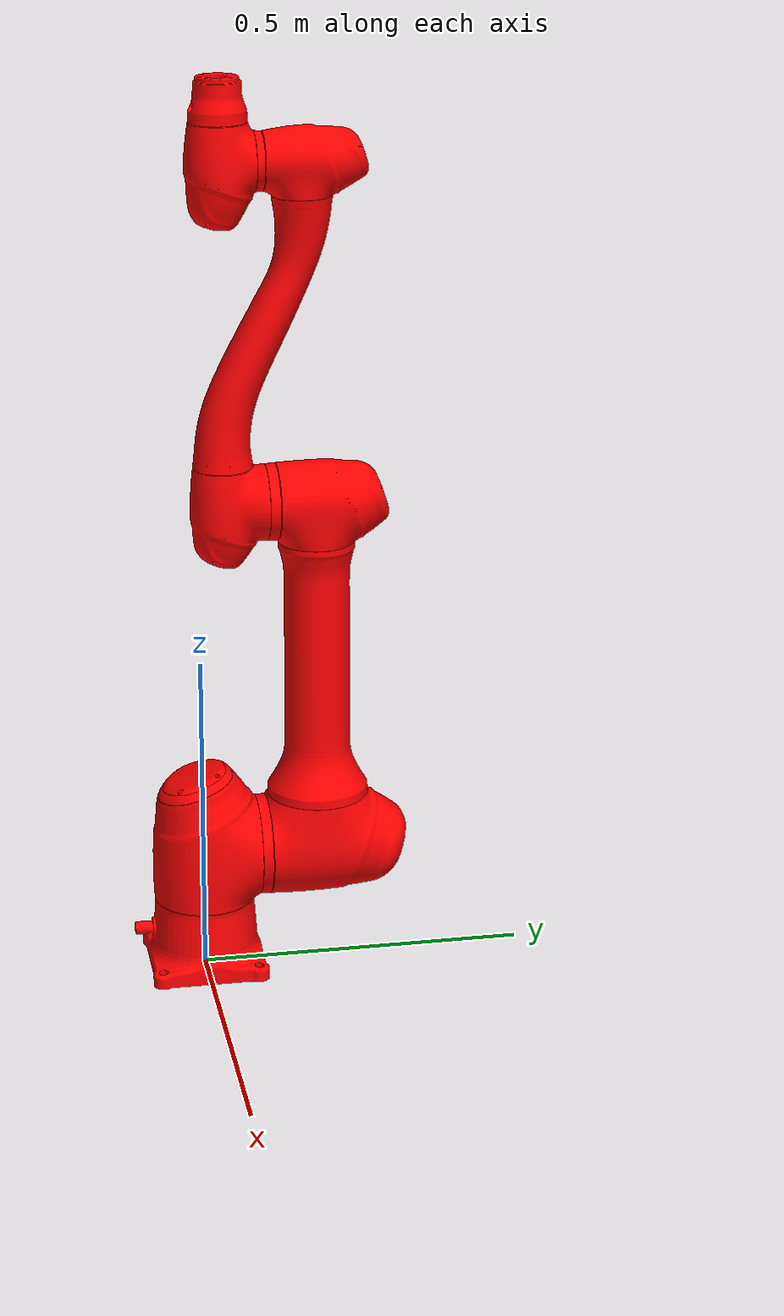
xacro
<?xml version="1.0"?>
<robot xmlns:xacro="http://www.ros.org/wiki/xacro" name="a0912">
    <xacro:arg name="initial_positions_file" default="initial_positions.yaml" />
    <link name="world"/>
    <joint name="world_fixed" type="fixed">
        <origin xyz="0 0 0" rpy="0 0 0"/>
        <parent link="world"/>
        <child link="base_link"/>
    </joint>
    <!-- Import a0912 urdf file -->
    <xacro:include filename="$(find dsr_description2)/urdf/a0912.urdf" />

    <!-- Import a0912 ros2_control description -->

    <xacro:include filename="dsr.ros2_control.xacro" />

    <xacro:dsr_moveit_ros2_control name="DSRFakeSystem" initial_positions_file="$(arg initial_positions_file)"/>
</robot>

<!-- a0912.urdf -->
<robot name="a0912" xmlns:xacro="http://www.ros.org/wiki/xacro">
		<link name="base_link">
			<inertial>
				<mass value="3.635"/>
				<origin xyz="4e-06   -0.001016     0.08181"/>
				<inertia ixx="0.02216" ixy="5.8001e-06" ixz="6.1941e-06" iyy="0.024835"
					iyz="-5.3034e-05"
					izz="0.021063"/>
				</inertial>
			<collision>
				<origin rpy="0 0 0" xyz="0 0 0" />
                <geometry>
					<mesh filename="package://dsr_description2/meshes/a0912_collision/A0912_0_0.dae" scale="0.001 0.001 0.001" />
                </geometry>
            </collision>
			<visual>
				<origin rpy="0 0 0" xyz="0 0 0" />
				<geometry>
					<mesh filename="package://dsr_description2/meshes/a0912_white/A0912_0_0.dae" scale="0.001 0.001 0.001" />
				</geometry>
			</visual>
		</link>
		<link name="base"/>
		<joint name="base_link-base" type="fixed">
			<origin rpy="0 0 0" xyz="0 0 0.450"/>
			<parent link="base_link"/>
			<child link="base"/>
		</joint>
		<!-- joint 1 -->
		<joint name="joint_1" type="revolute">
			<parent link="base_link" />
			<child link="link_1" />
			<origin rpy="0 0 0" xyz="0 0 0.195" />
			<axis xyz="0 0 1" />
			<limit effort="411" lower="-6.2832" upper="6.2832" velocity="3.1416"/>
			<dynamics friction="0" />
		</joint>
		<link name="link_1">
			<inertial>
				<mass value="7.863"/>
				<origin xyz="4.4e-05    0.029982    -0.01112"/>
				<inertia ixx="0.045839" ixy="1.2759e-05" ixz="-3.6168e-05" iyy="0.032913"
					iyz="-0.0029965"
					izz="0.044399"/>
			</inertial>
            <collision>
				<origin rpy="0 0 0" xyz="0 0 0" />
                <geometry>
					<mesh filename="package://dsr_description2/meshes/a0912_collision/A0912_1_0.dae" scale="0.001 0.001 0.001" />
                </geometry>
            </collision>
			<visual>
				<origin rpy="0 0 0" xyz="0 0 0" />
				<geometry>
					<mesh filename="package://dsr_description2/meshes/a0912_white/A0912_1_0.dae" scale="0.001 0.001 0.001" />
				</geometry>
			</visual>
			<collision>
				<origin rpy="0 0 0" xyz="0 0 0" />
                <geometry>
					<mesh filename="package://dsr_description2/meshes/a0912_collision/A0912_1_1.dae" scale="0.001 0.001 0.001" />
                </geometry>
            </collision>
            <visual>
				<origin rpy="0 0 0" xyz="0 0 0" />
				<geometry>
					<mesh filename="package://dsr_description2/meshes/a0912_white/A0912_1_1.dae" scale="0.001 0.001 0.001" />
				</geometry>
			</visual>
			<collision>
				<origin rpy="0 0 0" xyz="0 0 0" />
                <geometry>
					<mesh filename="package://dsr_description2/meshes/a0912_collision/A0912_1_2.dae" scale="0.001 0.001 0.001" />
                </geometry>
            </collision>
            <visual>
				<origin rpy="0 0 0" xyz="0 0 0" />
				<geometry>
					<mesh filename="package://dsr_description2/meshes/a0912_white/A0912_1_2.dae" scale="0.001 0.001 0.001" />
				</geometry>
			</visual>
		</link>
		<!-- joint2 -->
		<joint name="joint_2" type="revolute">
			<parent link="link_1" />
			<child link="link_2" />
			<origin rpy="0 -1.571 -1.571" xyz="0 0.039 0" />
			<axis xyz="0 0 1" />
			<limit effort="411" lower="-6.2832" upper="6.2832" velocity="3.1416"/>
			<dynamics friction="0" />
		</joint>
		<link name="link_2">
			<inertial>
				<mass value="10.985"/>
				<origin xyz="0.19748    0.001426     0.13191"/>
				<inertia ixx="0.04446" ixy="-0.0049948" ixz="-0.010992" iyy="0.67642" iyz="-2.8483e-05"
					izz="0.67428"/>
			</inertial>
            <collision>
				<origin rpy="0 0 0" xyz="0 0 0" />
                <geometry>
					<mesh filename="package://dsr_description2/meshes/a0912_collision/A0912_2_0.dae" scale="0.001 0.001 0.001" />
                </geometry>
            </collision>
			<visual>
				<origin rpy="0 0 0" xyz="0 0 0" />
				<geometry>
					<mesh filename="package://dsr_description2/meshes/a0912_white/A0912_2_0.dae" scale="0.001 0.001 0.001" />
				</geometry>
			</visual>
			<collision>
				<origin rpy="0 0 0" xyz="0 0 0" />
                <geometry>
					<mesh filename="package://dsr_description2/meshes/a0912_collision/A0912_2_1.dae" scale="0.001 0.001 0.001" />
                </geometry>
            </collision>
			<visual>
				<origin rpy="0 0 0" xyz="0 0 0" />
				<geometry>
					<mesh filename="package://dsr_description2/meshes/a0912_white/A0912_2_1.dae" scale="0.001 0.001 0.001" />
				</geometry>
			</visual>
			<collision>
				<origin rpy="0 0 0" xyz="0 0 0" />
                <geometry>
					<mesh filename="package://dsr_description2/meshes/a0912_collision/A0912_2_2.dae" scale="0.001 0.001 0.001" />
                </geometry>
            </collision>
			<visual>
				<origin rpy="0 0 0" xyz="0 0 0" />
				<geometry>
					<mesh filename="package://dsr_description2/meshes/a0912_white/A0912_2_2.dae" scale="0.001 0.001 0.001" />
				</geometry>
			</visual>
		</link>
		<!-- joint3 -->
		<joint name="joint_3" type="revolute">
			<parent link="link_2" />
			<child link="link_3" />
			<origin rpy="0 0 1.571" xyz="0.56 0 0" />
			<axis xyz="0 0 1" />
			<limit effort="194" lower="-2.7925" upper="2.7925" velocity="3.1416"/>
			<dynamics friction="0" />
		</joint>
		<link name="link_3">
			<inertial>
				<mass value="2.881"/>
				<origin xyz="8.5e-05   -0.002513    0.032058"/>
				<inertia ixx="0.012756" ixy="-5.4257e-06" ixz="1.6402e-05" iyy="0.011416"
					iyz="-0.0001989"
					izz="0.0080652"/>
			</inertial>
			<collision>
				<origin rpy="0 0 0" xyz="0 0 0" />
                <geometry>
					<mesh filename="package://dsr_description2/meshes/a0912_collision/A0912_3_0.dae" scale="0.001 0.001 0.001" />
                </geometry>
            </collision>
			<visual>
				<origin rpy="0 0 0" xyz="0 0 0" />
				<geometry>
					<mesh filename="package://dsr_description2/meshes/a0912_white/A0912_3_0.dae" scale="0.001 0.001 0.001" />
				</geometry>
			</visual>
			<collision>
				<origin rpy="0 0 0" xyz="0 0 0" />
                <geometry>
					<mesh filename="package://dsr_description2/meshes/a0912_collision/A0912_3_1.dae" scale="0.001 0.001 0.001" />
                </geometry>
            </collision>
            <visual>
				<origin rpy="0 0 0" xyz="0 0 0" />
				<geometry>
					<mesh filename="package://dsr_description2/meshes/a0912_white/A0912_3_1.dae" scale="0.001 0.001 0.001" />
				</geometry>
			</visual>
		</link>
		<!-- joint4 -->
		<joint name="joint_4" type="revolute">
			<parent link="link_3" />
			<child link="link_4" />
			<origin rpy="1.571 0 0" xyz="0 -0.516 0" />
			<axis xyz="0 0 1" />
			<limit effort="50" lower="-6.2832" upper="6.2832" velocity="6.2832"/>
			<dynamics friction="0" />
		</joint>
		<link name="link_4">
			<inertial>
				<mass value="3.273"/>
				<origin xyz="-9.6e-05    0.085314    -0.13975"/>
				<inertia ixx="0.12246" ixy="2.3905e-05" ixz="2.5022e-05" iyy="0.11307" iyz="-0.027995"
					izz="0.017186"/>
			</inertial>
            <collision>
				<origin rpy="0 0 0" xyz="0 0 0" />
                <geometry>
					<mesh filename="package://dsr_description2/meshes/a0912_collision/A0912_4_0.dae" scale="0.001 0.001 0.001" />
                </geometry>
            </collision>
			<visual>
				<origin rpy="0 0 0" xyz="0 0 0" />
				<geometry>
					<mesh filename="package://dsr_description2/meshes/a0912_white/A0912_4_0.dae" scale="0.001 0.001 0.001" />
				</geometry>
			</visual>
			<collision>
				<origin rpy="0 0 0" xyz="0 0 0" />
                <geometry>
					<mesh filename="package://dsr_description2/meshes/a0912_collision/A0912_4_1.dae" scale="0.001 0.001 0.001" />
                </geometry>
            </collision>
            <visual>
				<origin rpy="0 0 0" xyz="0 0 0" />
				<geometry>
					<mesh filename="package://dsr_description2/meshes/a0912_white/A0912_4_1.dae" scale="0.001 0.001 0.001" />
				</geometry>
			</visual>
		</link>
		<!-- joint5 -->
		<joint name="joint_5" type="revolute">
			<parent link="link_4" />
			<child link="link_5" />
			<origin rpy="-1.571 0 0" xyz="0 0 0" />
			<axis xyz="0 0 1" />
			<limit effort="50" lower="-6.2832" upper="6.2832" velocity="6.2832"/>
			<dynamics friction="0" />
		</joint>
		<link name="link_5">
			<inertial>
				<mass value="2.141"/>
				<origin xyz="0.000109   -0.003286     0.01477"/>
				<inertia ixx="0.013145" ixy="-4.7132e-06" ixz="8.5804e-06" iyy="0.0073072"
					iyz="-5.999e-05"
					izz="0.0090476"/>
			</inertial>
            <collision>
				<origin rpy="0 0 0" xyz="0 0 0" />
                <geometry>
					<mesh filename="package://dsr_description2/meshes/a0912_collision/A0912_5_0.dae" scale="0.001 0.001 0.001" />
                </geometry>
            </collision>
			<visual>
				<origin rpy="0 0 0" xyz="0 0 0" />
				<geometry>
					<mesh filename="package://dsr_description2/meshes/a0912_white/A0912_5_0.dae" scale="0.001 0.001 0.001" />
				</geometry>
			</visual>
			<collision>
				<origin rpy="0 0 0" xyz="0 0 0" />
                <geometry>
					<mesh filename="package://dsr_description2/meshes/a0912_collision/A0912_5_1.dae" scale="0.001 0.001 0.001" />
                </geometry>
            </collision>
            <visual>
				<origin rpy="0 0 0" xyz="0 0 0" />
				<geometry>
					<mesh filename="package://dsr_description2/meshes/a0912_white/A0912_5_1.dae" scale="0.001 0.001 0.001" />
				</geometry>
			</visual>
		</link>
		<!-- joint6 -->
		<joint name="joint_6" type="revolute">
			<parent link="link_5" />
			<child link="link_6" />
			<origin rpy="1.571 0 0" xyz="0 -0.124 0" />
			<axis xyz="0 0 1" />
			<limit effort="50" lower="-6.2832" upper="6.2832" velocity="6.2832"/>
			<dynamics friction="0" />
		</joint>
		<link name="link_6">
			<inertial>
				<mass value="0.784"/>
				<origin xyz="-1.9e-05      -6e-06    -0.05227"/>
				<inertia ixx="0.0067403" ixy="5.2373e-06" ixz="2.4957e-06" iyy="0.0048015"
					iyz="8.3671e-06"
					izz="0.0059696"/>
			</inertial>
			<collision>
				<origin rpy="0 0 0" xyz="0 0 0" />
                <geometry>
					<mesh filename="package://dsr_description2/meshes/a0912_collision/A0912_6_0.dae" scale="0.001 0.001 0.001" />
                </geometry>
            </collision>
			<visual>
				<origin rpy="0 0 0" xyz="0 0 0" />
				<geometry>
					<mesh filename="package://dsr_description2/meshes/a0912_white/A0912_6_0.dae" scale="0.001 0.001 0.001" />
				</geometry>
			</visual>
		</link>
</robot>
